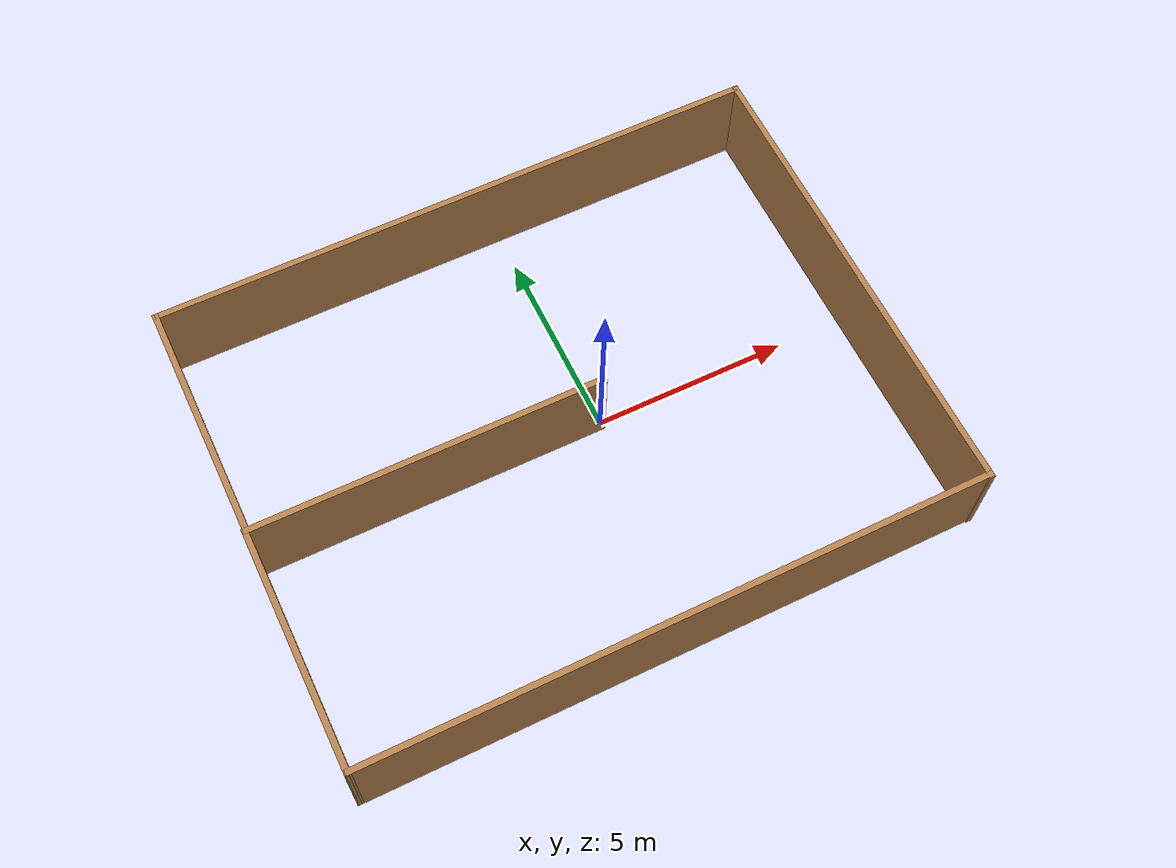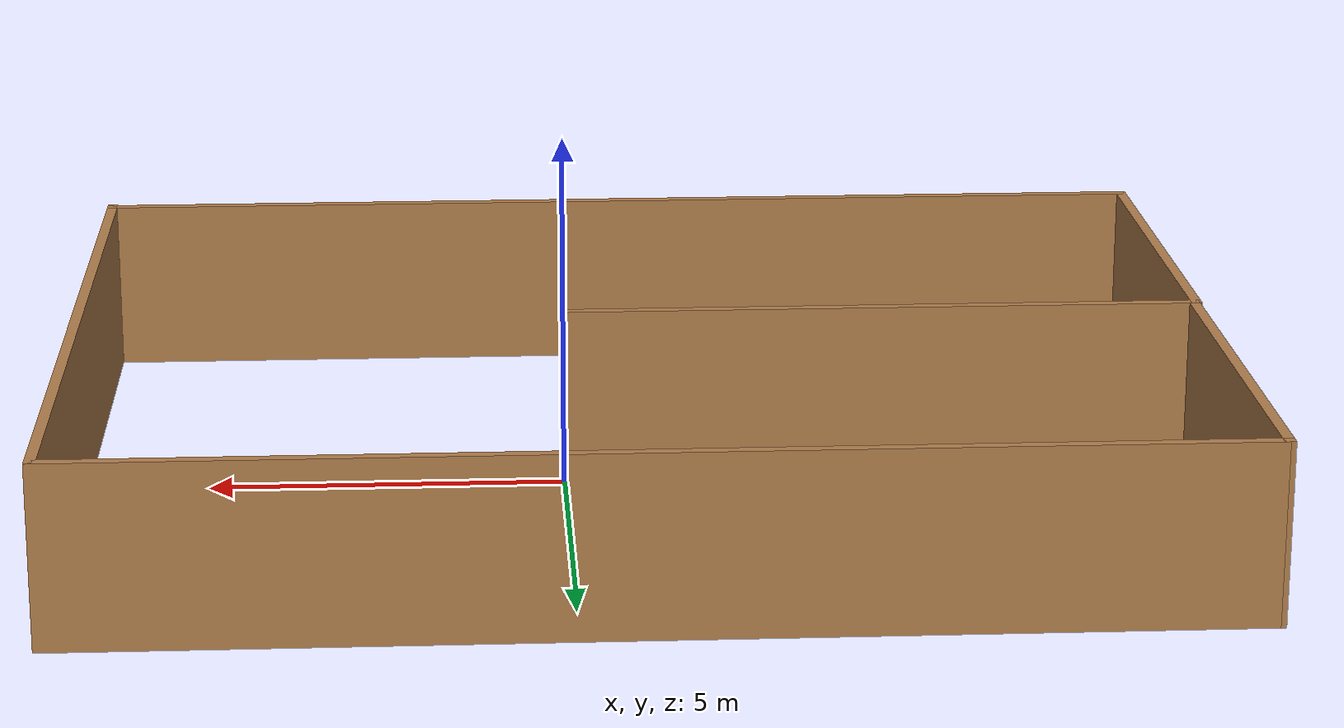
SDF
<?xml version='1.0'?>
<sdf version='1.7'>
  <model name='test1'>
    <pose>-1.08095 -0.052502 0 0 -0 0</pose>
    <link name='Wall_12'>
      <collision name='Wall_12_Collision'>
        <geometry>
          <box>
            <size>9 0.15 2.5</size>
          </box>
        </geometry>
        <pose>0 0 1.25 0 -0 0</pose>
      </collision>
      <visual name='Wall_12_Visual'>
        <pose>0 0 1.25 0 -0 0</pose>
        <geometry>
          <box>
            <size>9 0.15 2.5</size>
          </box>
        </geometry>
        <material>
          <script>
            <uri>file://media/materials/scripts/gazebo.material</uri>
            <name>Gazebo/Wood</name>
          </script>
          <ambient>1 1 1 1</ambient>
        </material>
        <meta>
          <layer>0</layer>
        </meta>
      </visual>
      <pose>-3.39507 -0.065 0 0 -0 0</pose>
    </link>
    <link name='Wall_14'>
      <collision name='Wall_14_Collision'>
        <geometry>
          <box>
            <size>6.25 0.15 2.5</size>
          </box>
        </geometry>
        <pose>0 0 1.25 0 -0 0</pose>
      </collision>
      <visual name='Wall_14_Visual'>
        <pose>0 0 1.25 0 -0 0</pose>
        <geometry>
          <box>
            <size>6.25 0.15 2.5</size>
          </box>
        </geometry>
        <material>
          <script>
            <uri>file://media/materials/scripts/gazebo.material</uri>
            <name>Gazebo/Wood</name>
          </script>
          <ambient>1 1 1 1</ambient>
        </material>
        <meta>
          <layer>0</layer>
        </meta>
      </visual>
      <pose>-7.82007 2.985 0 0 -0 1.5708</pose>
    </link>
    <link name='Wall_15'>
      <collision name='Wall_15_Collision'>
        <geometry>
          <box>
            <size>15.82 0.15 2.5</size>
          </box>
        </geometry>
        <pose>0 0 1.25 0 -0 0</pose>
      </collision>
      <visual name='Wall_15_Visual'>
        <pose>0 0 1.25 0 -0 0</pose>
        <geometry>
          <box>
            <size>15.82 0.15 2.5</size>
          </box>
        </geometry>
        <material>
          <script>
            <uri>file://media/materials/scripts/gazebo.material</uri>
            <name>Gazebo/Wood</name>
          </script>
          <ambient>1 1 1 1</ambient>
        </material>
        <meta>
          <layer>0</layer>
        </meta>
      </visual>
      <pose>0.014927 6.05 0 0 -0 0.001914</pose>
    </link>
    <link name='Wall_16'>
      <collision name='Wall_16_Collision'>
        <geometry>
          <box>
            <size>12.25 0.15 2.5</size>
          </box>
        </geometry>
        <pose>0 0 1.25 0 -0 0</pose>
      </collision>
      <visual name='Wall_16_Visual'>
        <pose>0 0 1.25 0 -0 0</pose>
        <geometry>
          <box>
            <size>12.25 0.15 2.5</size>
          </box>
        </geometry>
        <material>
          <script>
            <uri>file://media/materials/scripts/gazebo.material</uri>
            <name>Gazebo/Wood</name>
          </script>
          <ambient>1 1 1 1</ambient>
        </material>
        <meta>
          <layer>0</layer>
        </meta>
      </visual>
      <pose>7.84993 -0.015 0 0 -0 -1.5708</pose>
    </link>
    <link name='Wall_17'>
      <collision name='Wall_17_Collision'>
        <geometry>
          <box>
            <size>15.82 0.15 2.5</size>
          </box>
        </geometry>
        <pose>0 0 1.25 0 -0 0</pose>
      </collision>
      <visual name='Wall_17_Visual'>
        <pose>0 0 1.25 0 -0 0</pose>
        <geometry>
          <box>
            <size>15.82 0.15 2.5</size>
          </box>
        </geometry>
        <material>
          <script>
            <uri>file://media/materials/scripts/gazebo.material</uri>
            <name>Gazebo/Wood</name>
          </script>
          <ambient>1 1 1 1</ambient>
        </material>
        <meta>
          <layer>0</layer>
        </meta>
      </visual>
      <pose>0.014927 -6.05 0 0 -0 -3.13968</pose>
    </link>
    <link name='Wall_19'>
      <collision name='Wall_19_Collision'>
        <geometry>
          <box>
            <size>6.15 0.15 2.5</size>
          </box>
        </geometry>
        <pose>0 0 1.25 0 -0 0</pose>
      </collision>
      <visual name='Wall_19_Visual'>
        <pose>0 0 1.25 0 -0 0</pose>
        <geometry>
          <box>
            <size>6.15 0.15 2.5</size>
          </box>
        </geometry>
        <material>
          <script>
            <uri>file://media/materials/scripts/gazebo.material</uri>
            <name>Gazebo/Wood</name>
          </script>
          <ambient>1 1 1 1</ambient>
        </material>
        <meta>
          <layer>0</layer>
        </meta>
      </visual>
      <pose>-7.85007 -3.065 0 0 -0 1.5708</pose>
    </link>
    <static>1</static>
  </model>
</sdf>
